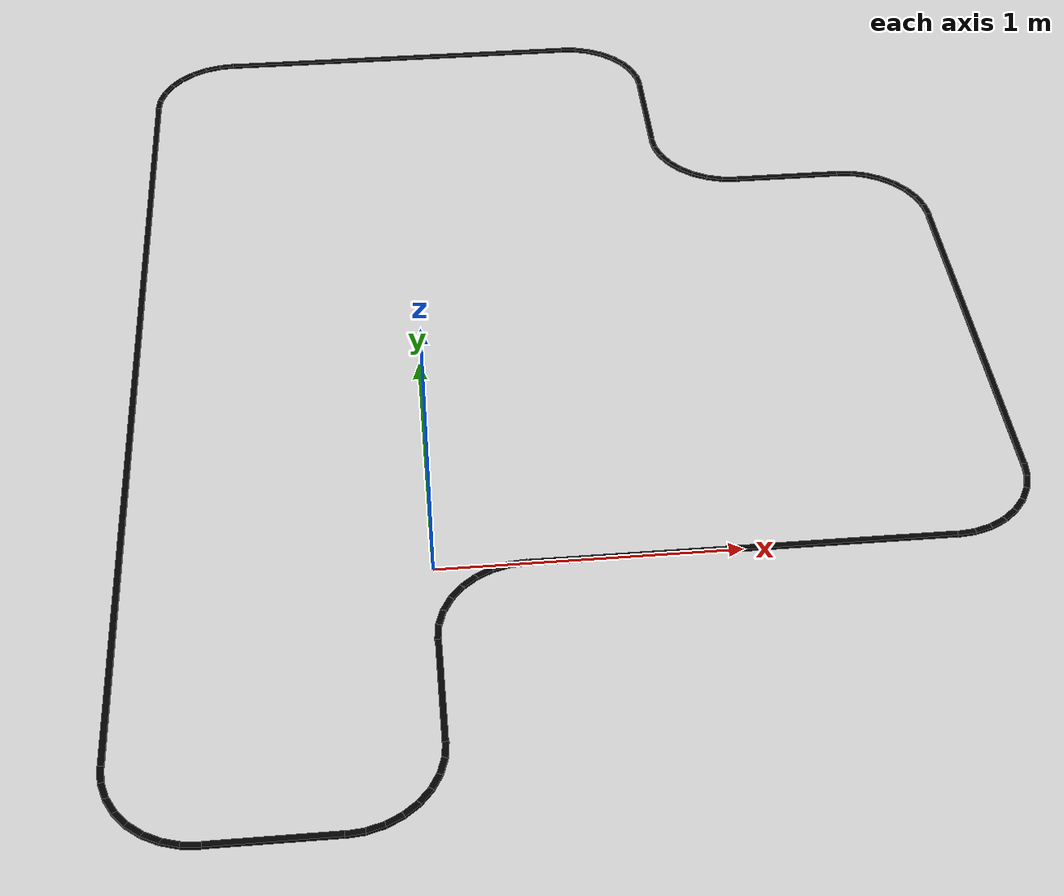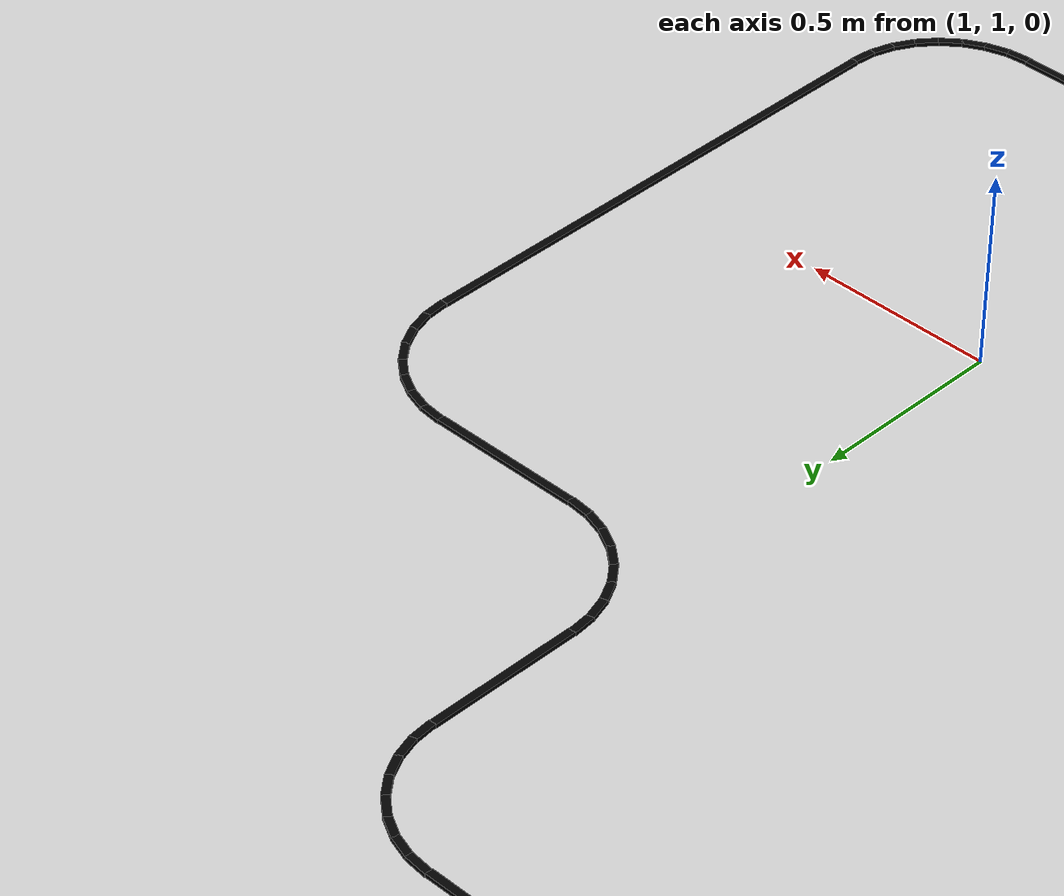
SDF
<sdf version="1.6">
 <world name="line_track_world">
  <include><uri>model://sun</uri></include>
  <include><uri>model://ground_plane</uri></include>
  <model name="straight_1">
   <static>true</static>
   <link name="link">
    <pose>1.0 0.0 0.005 0 0 0.0</pose>
    <visual name="visual">
     <geometry><box><size>1.4 0.02 0.01</size></box></geometry>
     <material><ambient>0 0 0 1</ambient><diffuse>0 0 0 1</diffuse></material>
    </visual>
    <collision name="collision">
     <geometry><box><size>1.4 0.02 0.01</size></box></geometry>
     <surface><contact><collide_without_contact>true</collide_without_contact></contact></surface>
    </collision>
   </link>
  </model>
  <model name="arc_2">
   <static>true</static>
   <link name="link">
    <pose>1.729405142098868 0.0014445819983409658 0.005 0 0 0.09817477042468115</pose>
    <visual name="visual">
     <geometry><box><size>0.06175079840762318 0.02 0.01</size></box></geometry>
     <material><ambient>0 0 0 1</ambient><diffuse>0 0 0 1</diffuse></material>
    </visual>
    <collision name="collision">
     <geometry><box><size>0.06175079840762318 0.02 0.01</size></box></geometry>
     <surface><contact><collide_without_contact>true</collide_without_contact></contact></surface>
    </collision>
   </link>
  </model>
  <model name="arc_3">
   <static>true</static>
   <link name="link">
    <pose>1.7870854031763386 0.01291789928033732 0.005 0 0 0.294524311274043</pose>
    <visual name="visual">
     <geometry><box><size>0.06175079840762318 0.02 0.01</size></box></geometry>
     <material><ambient>0 0 0 1</ambient><diffuse>0 0 0 1</diffuse></material>
    </visual>
    <collision name="collision">
     <geometry><box><size>0.06175079840762318 0.02 0.01</size></box></geometry>
     <surface><contact><collide_without_contact>true</collide_without_contact></contact></surface>
    </collision>
   </link>
  </model>
  <model name="arc_4">
   <static>true</static>
   <link name="link">
    <pose>1.8414190210477992 0.03542362069549354 0.005 0 0 0.4908738521234053</pose>
    <visual name="visual">
     <geometry><box><size>0.06175079840762318 0.02 0.01</size></box></geometry>
     <material><ambient>0 0 0 1</ambient><diffuse>0 0 0 1</diffuse></material>
    </visual>
    <collision name="collision">
     <geometry><box><size>0.06175079840762318 0.02 0.01</size></box></geometry>
     <surface><contact><collide_without_contact>true</collide_without_contact></contact></surface>
    </collision>
   </link>
  </model>
  <model name="arc_5">
   <static>true</static>
   <link name="link">
    <pose>1.8903179852490937 0.0680968639911789 0.005 0 0 0.6872233929727672</pose>
    <visual name="visual">
     <geometry><box><size>0.06175079840762318 0.02 0.01</size></box></geometry>
     <material><ambient>0 0 0 1</ambient><diffuse>0 0 0 1</diffuse></material>
    </visual>
    <collision name="collision">
     <geometry><box><size>0.06175079840762318 0.02 0.01</size></box></geometry>
     <surface><contact><collide_without_contact>true</collide_without_contact></contact></surface>
    </collision>
   </link>
  </model>
  <model name="arc_6">
   <static>true</static>
   <link name="link">
    <pose>1.931903136008821 0.10968201475090636 0.005 0 0 0.8835729338221293</pose>
    <visual name="visual">
     <geometry><box><size>0.06175079840762318 0.02 0.01</size></box></geometry>
     <material><ambient>0 0 0 1</ambient><diffuse>0 0 0 1</diffuse></material>
    </visual>
    <collision name="collision">
     <geometry><box><size>0.06175079840762318 0.02 0.01</size></box></geometry>
     <surface><contact><collide_without_contact>true</collide_without_contact></contact></surface>
    </collision>
   </link>
  </model>
  <model name="arc_7">
   <static>true</static>
   <link name="link">
    <pose>1.9645763793045066 0.1585809789522007 0.005 0 0 1.0799224746714913</pose>
    <visual name="visual">
     <geometry><box><size>0.06175079840762318 0.02 0.01</size></box></geometry>
     <material><ambient>0 0 0 1</ambient><diffuse>0 0 0 1</diffuse></material>
    </visual>
    <collision name="collision">
     <geometry><box><size>0.06175079840762318 0.02 0.01</size></box></geometry>
     <surface><contact><collide_without_contact>true</collide_without_contact></contact></surface>
    </collision>
   </link>
  </model>
  <model name="arc_8">
   <static>true</static>
   <link name="link">
    <pose>1.9870821007196626 0.2129145968236613 0.005 0 0 1.2762720155208536</pose>
    <visual name="visual">
     <geometry><box><size>0.06175079840762318 0.02 0.01</size></box></geometry>
     <material><ambient>0 0 0 1</ambient><diffuse>0 0 0 1</diffuse></material>
    </visual>
    <collision name="collision">
     <geometry><box><size>0.06175079840762318 0.02 0.01</size></box></geometry>
     <surface><contact><collide_without_contact>true</collide_without_contact></contact></surface>
    </collision>
   </link>
  </model>
  <model name="arc_9">
   <static>true</static>
   <link name="link">
    <pose>1.9985554180016591 0.2705948579011318 0.005 0 0 1.4726215563702154</pose>
    <visual name="visual">
     <geometry><box><size>0.06175079840762318 0.02 0.01</size></box></geometry>
     <material><ambient>0 0 0 1</ambient><diffuse>0 0 0 1</diffuse></material>
    </visual>
    <collision name="collision">
     <geometry><box><size>0.06175079840762318 0.02 0.01</size></box></geometry>
     <surface><contact><collide_without_contact>true</collide_without_contact></contact></surface>
    </collision>
   </link>
  </model>
  <model name="straight_10">
   <static>true</static>
   <link name="link">
    <pose>2.0 1.0 0.005 0 0 1.5707963267948966</pose>
    <visual name="visual">
     <geometry><box><size>1.4 0.02 0.01</size></box></geometry>
     <material><ambient>0 0 0 1</ambient><diffuse>0 0 0 1</diffuse></material>
    </visual>
    <collision name="collision">
     <geometry><box><size>1.4 0.02 0.01</size></box></geometry>
     <surface><contact><collide_without_contact>true</collide_without_contact></contact></surface>
    </collision>
   </link>
  </model>
  <model name="arc_11">
   <static>true</static>
   <link name="link">
    <pose>1.9985554180016591 1.729405142098868 0.005 0 0 1.6689710972195777</pose>
    <visual name="visual">
     <geometry><box><size>0.06175079840762318 0.02 0.01</size></box></geometry>
     <material><ambient>0 0 0 1</ambient><diffuse>0 0 0 1</diffuse></material>
    </visual>
    <collision name="collision">
     <geometry><box><size>0.06175079840762318 0.02 0.01</size></box></geometry>
     <surface><contact><collide_without_contact>true</collide_without_contact></contact></surface>
    </collision>
   </link>
  </model>
  <model name="arc_12">
   <static>true</static>
   <link name="link">
    <pose>1.9870821007196626 1.7870854031763386 0.005 0 0 1.8653206380689396</pose>
    <visual name="visual">
     <geometry><box><size>0.06175079840762318 0.02 0.01</size></box></geometry>
     <material><ambient>0 0 0 1</ambient><diffuse>0 0 0 1</diffuse></material>
    </visual>
    <collision name="collision">
     <geometry><box><size>0.06175079840762318 0.02 0.01</size></box></geometry>
     <surface><contact><collide_without_contact>true</collide_without_contact></contact></surface>
    </collision>
   </link>
  </model>
  <model name="arc_13">
   <static>true</static>
   <link name="link">
    <pose>1.9645763793045066 1.8414190210477992 0.005 0 0 2.061670178918302</pose>
    <visual name="visual">
     <geometry><box><size>0.06175079840762318 0.02 0.01</size></box></geometry>
     <material><ambient>0 0 0 1</ambient><diffuse>0 0 0 1</diffuse></material>
    </visual>
    <collision name="collision">
     <geometry><box><size>0.06175079840762318 0.02 0.01</size></box></geometry>
     <surface><contact><collide_without_contact>true</collide_without_contact></contact></surface>
    </collision>
   </link>
  </model>
  <model name="arc_14">
   <static>true</static>
   <link name="link">
    <pose>1.931903136008821 1.8903179852490937 0.005 0 0 2.2580197197676637</pose>
    <visual name="visual">
     <geometry><box><size>0.06175079840762318 0.02 0.01</size></box></geometry>
     <material><ambient>0 0 0 1</ambient><diffuse>0 0 0 1</diffuse></material>
    </visual>
    <collision name="collision">
     <geometry><box><size>0.06175079840762318 0.02 0.01</size></box></geometry>
     <surface><contact><collide_without_contact>true</collide_without_contact></contact></surface>
    </collision>
   </link>
  </model>
  <model name="arc_15">
   <static>true</static>
   <link name="link">
    <pose>1.8903179852490937 1.931903136008821 0.005 0 0 2.454369260617026</pose>
    <visual name="visual">
     <geometry><box><size>0.06175079840762318 0.02 0.01</size></box></geometry>
     <material><ambient>0 0 0 1</ambient><diffuse>0 0 0 1</diffuse></material>
    </visual>
    <collision name="collision">
     <geometry><box><size>0.06175079840762318 0.02 0.01</size></box></geometry>
     <surface><contact><collide_without_contact>true</collide_without_contact></contact></surface>
    </collision>
   </link>
  </model>
  <model name="arc_16">
   <static>true</static>
   <link name="link">
    <pose>1.8414190210477992 1.9645763793045063 0.005 0 0 2.650718801466388</pose>
    <visual name="visual">
     <geometry><box><size>0.06175079840762318 0.02 0.01</size></box></geometry>
     <material><ambient>0 0 0 1</ambient><diffuse>0 0 0 1</diffuse></material>
    </visual>
    <collision name="collision">
     <geometry><box><size>0.06175079840762318 0.02 0.01</size></box></geometry>
     <surface><contact><collide_without_contact>true</collide_without_contact></contact></surface>
    </collision>
   </link>
  </model>
  <model name="arc_17">
   <static>true</static>
   <link name="link">
    <pose>1.7870854031763386 1.9870821007196626 0.005 0 0 2.84706834231575</pose>
    <visual name="visual">
     <geometry><box><size>0.06175079840762318 0.02 0.01</size></box></geometry>
     <material><ambient>0 0 0 1</ambient><diffuse>0 0 0 1</diffuse></material>
    </visual>
    <collision name="collision">
     <geometry><box><size>0.06175079840762318 0.02 0.01</size></box></geometry>
     <surface><contact><collide_without_contact>true</collide_without_contact></contact></surface>
    </collision>
   </link>
  </model>
  <model name="arc_18">
   <static>true</static>
   <link name="link">
    <pose>1.729405142098868 1.998555418001659 0.005 0 0 3.043417883165112</pose>
    <visual name="visual">
     <geometry><box><size>0.06175079840762318 0.02 0.01</size></box></geometry>
     <material><ambient>0 0 0 1</ambient><diffuse>0 0 0 1</diffuse></material>
    </visual>
    <collision name="collision">
     <geometry><box><size>0.06175079840762318 0.02 0.01</size></box></geometry>
     <surface><contact><collide_without_contact>true</collide_without_contact></contact></surface>
    </collision>
   </link>
  </model>
  <model name="straight_19">
   <static>true</static>
   <link name="link">
    <pose>1.5 2.0 0.005 0 0 3.141592653589793</pose>
    <visual name="visual">
     <geometry><box><size>0.3999999999999999 0.02 0.01</size></box></geometry>
     <material><ambient>0 0 0 1</ambient><diffuse>0 0 0 1</diffuse></material>
    </visual>
    <collision name="collision">
     <geometry><box><size>0.3999999999999999 0.02 0.01</size></box></geometry>
     <surface><contact><collide_without_contact>true</collide_without_contact></contact></surface>
    </collision>
   </link>
  </model>
  <model name="arc_20">
   <static>true</static>
   <link name="link">
    <pose>1.270594857901132 2.001444581998341 0.005 0 0 -0.09817477042468115</pose>
    <visual name="visual">
     <geometry><box><size>0.06175079840762318 0.02 0.01</size></box></geometry>
     <material><ambient>0 0 0 1</ambient><diffuse>0 0 0 1</diffuse></material>
    </visual>
    <collision name="collision">
     <geometry><box><size>0.06175079840762318 0.02 0.01</size></box></geometry>
     <surface><contact><collide_without_contact>true</collide_without_contact></contact></surface>
    </collision>
   </link>
  </model>
  <model name="arc_21">
   <static>true</static>
   <link name="link">
    <pose>1.2129145968236614 2.012917899280337 0.005 0 0 -0.294524311274043</pose>
    <visual name="visual">
     <geometry><box><size>0.06175079840762318 0.02 0.01</size></box></geometry>
     <material><ambient>0 0 0 1</ambient><diffuse>0 0 0 1</diffuse></material>
    </visual>
    <collision name="collision">
     <geometry><box><size>0.06175079840762318 0.02 0.01</size></box></geometry>
     <surface><contact><collide_without_contact>true</collide_without_contact></contact></surface>
    </collision>
   </link>
  </model>
  <model name="arc_22">
   <static>true</static>
   <link name="link">
    <pose>1.1585809789522008 2.0354236206954934 0.005 0 0 -0.4908738521234053</pose>
    <visual name="visual">
     <geometry><box><size>0.06175079840762318 0.02 0.01</size></box></geometry>
     <material><ambient>0 0 0 1</ambient><diffuse>0 0 0 1</diffuse></material>
    </visual>
    <collision name="collision">
     <geometry><box><size>0.06175079840762318 0.02 0.01</size></box></geometry>
     <surface><contact><collide_without_contact>true</collide_without_contact></contact></surface>
    </collision>
   </link>
  </model>
  <model name="arc_23">
   <static>true</static>
   <link name="link">
    <pose>1.1096820147509066 2.0680968639911788 0.005 0 0 -0.6872233929727671</pose>
    <visual name="visual">
     <geometry><box><size>0.06175079840762318 0.02 0.01</size></box></geometry>
     <material><ambient>0 0 0 1</ambient><diffuse>0 0 0 1</diffuse></material>
    </visual>
    <collision name="collision">
     <geometry><box><size>0.06175079840762318 0.02 0.01</size></box></geometry>
     <surface><contact><collide_without_contact>true</collide_without_contact></contact></surface>
    </collision>
   </link>
  </model>
  <model name="arc_24">
   <static>true</static>
   <link name="link">
    <pose>1.068096863991179 2.109682014750906 0.005 0 0 -0.8835729338221294</pose>
    <visual name="visual">
     <geometry><box><size>0.06175079840762318 0.02 0.01</size></box></geometry>
     <material><ambient>0 0 0 1</ambient><diffuse>0 0 0 1</diffuse></material>
    </visual>
    <collision name="collision">
     <geometry><box><size>0.06175079840762318 0.02 0.01</size></box></geometry>
     <surface><contact><collide_without_contact>true</collide_without_contact></contact></surface>
    </collision>
   </link>
  </model>
  <model name="arc_25">
   <static>true</static>
   <link name="link">
    <pose>1.0354236206954937 2.1585809789522004 0.005 0 0 -1.0799224746714913</pose>
    <visual name="visual">
     <geometry><box><size>0.06175079840762318 0.02 0.01</size></box></geometry>
     <material><ambient>0 0 0 1</ambient><diffuse>0 0 0 1</diffuse></material>
    </visual>
    <collision name="collision">
     <geometry><box><size>0.06175079840762318 0.02 0.01</size></box></geometry>
     <surface><contact><collide_without_contact>true</collide_without_contact></contact></surface>
    </collision>
   </link>
  </model>
  <model name="arc_26">
   <static>true</static>
   <link name="link">
    <pose>1.0129178992803374 2.212914596823661 0.005 0 0 -1.2762720155208536</pose>
    <visual name="visual">
     <geometry><box><size>0.06175079840762318 0.02 0.01</size></box></geometry>
     <material><ambient>0 0 0 1</ambient><diffuse>0 0 0 1</diffuse></material>
    </visual>
    <collision name="collision">
     <geometry><box><size>0.06175079840762318 0.02 0.01</size></box></geometry>
     <surface><contact><collide_without_contact>true</collide_without_contact></contact></surface>
    </collision>
   </link>
  </model>
  <model name="arc_27">
   <static>true</static>
   <link name="link">
    <pose>1.001444581998341 2.2705948579011315 0.005 0 0 -1.4726215563702154</pose>
    <visual name="visual">
     <geometry><box><size>0.06175079840762318 0.02 0.01</size></box></geometry>
     <material><ambient>0 0 0 1</ambient><diffuse>0 0 0 1</diffuse></material>
    </visual>
    <collision name="collision">
     <geometry><box><size>0.06175079840762318 0.02 0.01</size></box></geometry>
     <surface><contact><collide_without_contact>true</collide_without_contact></contact></surface>
    </collision>
   </link>
  </model>
  <model name="straight_28">
   <static>true</static>
   <link name="link">
    <pose>1.0 2.5 0.005 0 0 1.5707963267948966</pose>
    <visual name="visual">
     <geometry><box><size>0.40000000000000036 0.02 0.01</size></box></geometry>
     <material><ambient>0 0 0 1</ambient><diffuse>0 0 0 1</diffuse></material>
    </visual>
    <collision name="collision">
     <geometry><box><size>0.40000000000000036 0.02 0.01</size></box></geometry>
     <surface><contact><collide_without_contact>true</collide_without_contact></contact></surface>
    </collision>
   </link>
  </model>
  <model name="arc_29">
   <static>true</static>
   <link name="link">
    <pose>0.998555418001659 2.7294051420988685 0.005 0 0 1.6689710972195777</pose>
    <visual name="visual">
     <geometry><box><size>0.06175079840762318 0.02 0.01</size></box></geometry>
     <material><ambient>0 0 0 1</ambient><diffuse>0 0 0 1</diffuse></material>
    </visual>
    <collision name="collision">
     <geometry><box><size>0.06175079840762318 0.02 0.01</size></box></geometry>
     <surface><contact><collide_without_contact>true</collide_without_contact></contact></surface>
    </collision>
   </link>
  </model>
  <model name="arc_30">
   <static>true</static>
   <link name="link">
    <pose>0.9870821007196626 2.787085403176339 0.005 0 0 1.8653206380689396</pose>
    <visual name="visual">
     <geometry><box><size>0.06175079840762318 0.02 0.01</size></box></geometry>
     <material><ambient>0 0 0 1</ambient><diffuse>0 0 0 1</diffuse></material>
    </visual>
    <collision name="collision">
     <geometry><box><size>0.06175079840762318 0.02 0.01</size></box></geometry>
     <surface><contact><collide_without_contact>true</collide_without_contact></contact></surface>
    </collision>
   </link>
  </model>
  <model name="arc_31">
   <static>true</static>
   <link name="link">
    <pose>0.9645763793045065 2.8414190210477996 0.005 0 0 2.061670178918302</pose>
    <visual name="visual">
     <geometry><box><size>0.06175079840762318 0.02 0.01</size></box></geometry>
     <material><ambient>0 0 0 1</ambient><diffuse>0 0 0 1</diffuse></material>
    </visual>
    <collision name="collision">
     <geometry><box><size>0.06175079840762318 0.02 0.01</size></box></geometry>
     <surface><contact><collide_without_contact>true</collide_without_contact></contact></surface>
    </collision>
   </link>
  </model>
  <model name="arc_32">
   <static>true</static>
   <link name="link">
    <pose>0.931903136008821 2.890317985249094 0.005 0 0 2.2580197197676637</pose>
    <visual name="visual">
     <geometry><box><size>0.06175079840762318 0.02 0.01</size></box></geometry>
     <material><ambient>0 0 0 1</ambient><diffuse>0 0 0 1</diffuse></material>
    </visual>
    <collision name="collision">
     <geometry><box><size>0.06175079840762318 0.02 0.01</size></box></geometry>
     <surface><contact><collide_without_contact>true</collide_without_contact></contact></surface>
    </collision>
   </link>
  </model>
  <model name="arc_33">
   <static>true</static>
   <link name="link">
    <pose>0.8903179852490936 2.9319031360088212 0.005 0 0 2.454369260617026</pose>
    <visual name="visual">
     <geometry><box><size>0.06175079840762318 0.02 0.01</size></box></geometry>
     <material><ambient>0 0 0 1</ambient><diffuse>0 0 0 1</diffuse></material>
    </visual>
    <collision name="collision">
     <geometry><box><size>0.06175079840762318 0.02 0.01</size></box></geometry>
     <surface><contact><collide_without_contact>true</collide_without_contact></contact></surface>
    </collision>
   </link>
  </model>
  <model name="arc_34">
   <static>true</static>
   <link name="link">
    <pose>0.8414190210477993 2.9645763793045066 0.005 0 0 2.650718801466388</pose>
    <visual name="visual">
     <geometry><box><size>0.06175079840762318 0.02 0.01</size></box></geometry>
     <material><ambient>0 0 0 1</ambient><diffuse>0 0 0 1</diffuse></material>
    </visual>
    <collision name="collision">
     <geometry><box><size>0.06175079840762318 0.02 0.01</size></box></geometry>
     <surface><contact><collide_without_contact>true</collide_without_contact></contact></surface>
    </collision>
   </link>
  </model>
  <model name="arc_35">
   <static>true</static>
   <link name="link">
    <pose>0.7870854031763387 2.987082100719663 0.005 0 0 2.84706834231575</pose>
    <visual name="visual">
     <geometry><box><size>0.06175079840762318 0.02 0.01</size></box></geometry>
     <material><ambient>0 0 0 1</ambient><diffuse>0 0 0 1</diffuse></material>
    </visual>
    <collision name="collision">
     <geometry><box><size>0.06175079840762318 0.02 0.01</size></box></geometry>
     <surface><contact><collide_without_contact>true</collide_without_contact></contact></surface>
    </collision>
   </link>
  </model>
  <model name="arc_36">
   <static>true</static>
   <link name="link">
    <pose>0.7294051420988682 2.998555418001659 0.005 0 0 3.043417883165112</pose>
    <visual name="visual">
     <geometry><box><size>0.06175079840762318 0.02 0.01</size></box></geometry>
     <material><ambient>0 0 0 1</ambient><diffuse>0 0 0 1</diffuse></material>
    </visual>
    <collision name="collision">
     <geometry><box><size>0.06175079840762318 0.02 0.01</size></box></geometry>
     <surface><contact><collide_without_contact>true</collide_without_contact></contact></surface>
    </collision>
   </link>
  </model>
  <model name="straight_37">
   <static>true</static>
   <link name="link">
    <pose>0.0 3.0 0.005 0 0 3.141592653589793</pose>
    <visual name="visual">
     <geometry><box><size>1.4 0.02 0.01</size></box></geometry>
     <material><ambient>0 0 0 1</ambient><diffuse>0 0 0 1</diffuse></material>
    </visual>
    <collision name="collision">
     <geometry><box><size>1.4 0.02 0.01</size></box></geometry>
     <surface><contact><collide_without_contact>true</collide_without_contact></contact></surface>
    </collision>
   </link>
  </model>
  <model name="arc_38">
   <static>true</static>
   <link name="link">
    <pose>-0.7294051420988682 2.998555418001659 0.005 0 0 3.2397674240144743</pose>
    <visual name="visual">
     <geometry><box><size>0.06175079840762318 0.02 0.01</size></box></geometry>
     <material><ambient>0 0 0 1</ambient><diffuse>0 0 0 1</diffuse></material>
    </visual>
    <collision name="collision">
     <geometry><box><size>0.06175079840762318 0.02 0.01</size></box></geometry>
     <surface><contact><collide_without_contact>true</collide_without_contact></contact></surface>
    </collision>
   </link>
  </model>
  <model name="arc_39">
   <static>true</static>
   <link name="link">
    <pose>-0.7870854031763386 2.987082100719663 0.005 0 0 3.436116964863836</pose>
    <visual name="visual">
     <geometry><box><size>0.06175079840762318 0.02 0.01</size></box></geometry>
     <material><ambient>0 0 0 1</ambient><diffuse>0 0 0 1</diffuse></material>
    </visual>
    <collision name="collision">
     <geometry><box><size>0.06175079840762318 0.02 0.01</size></box></geometry>
     <surface><contact><collide_without_contact>true</collide_without_contact></contact></surface>
    </collision>
   </link>
  </model>
  <model name="arc_40">
   <static>true</static>
   <link name="link">
    <pose>-0.8414190210477992 2.9645763793045066 0.005 0 0 3.6324665057131984</pose>
    <visual name="visual">
     <geometry><box><size>0.06175079840762318 0.02 0.01</size></box></geometry>
     <material><ambient>0 0 0 1</ambient><diffuse>0 0 0 1</diffuse></material>
    </visual>
    <collision name="collision">
     <geometry><box><size>0.06175079840762318 0.02 0.01</size></box></geometry>
     <surface><contact><collide_without_contact>true</collide_without_contact></contact></surface>
    </collision>
   </link>
  </model>
  <model name="arc_41">
   <static>true</static>
   <link name="link">
    <pose>-0.8903179852490936 2.9319031360088212 0.005 0 0 3.8288160465625602</pose>
    <visual name="visual">
     <geometry><box><size>0.06175079840762318 0.02 0.01</size></box></geometry>
     <material><ambient>0 0 0 1</ambient><diffuse>0 0 0 1</diffuse></material>
    </visual>
    <collision name="collision">
     <geometry><box><size>0.06175079840762318 0.02 0.01</size></box></geometry>
     <surface><contact><collide_without_contact>true</collide_without_contact></contact></surface>
    </collision>
   </link>
  </model>
  <model name="arc_42">
   <static>true</static>
   <link name="link">
    <pose>-0.931903136008821 2.890317985249094 0.005 0 0 4.025165587411923</pose>
    <visual name="visual">
     <geometry><box><size>0.06175079840762318 0.02 0.01</size></box></geometry>
     <material><ambient>0 0 0 1</ambient><diffuse>0 0 0 1</diffuse></material>
    </visual>
    <collision name="collision">
     <geometry><box><size>0.06175079840762318 0.02 0.01</size></box></geometry>
     <surface><contact><collide_without_contact>true</collide_without_contact></contact></surface>
    </collision>
   </link>
  </model>
  <model name="arc_43">
   <static>true</static>
   <link name="link">
    <pose>-0.9645763793045063 2.8414190210477996 0.005 0 0 4.221515128261284</pose>
    <visual name="visual">
     <geometry><box><size>0.06175079840762318 0.02 0.01</size></box></geometry>
     <material><ambient>0 0 0 1</ambient><diffuse>0 0 0 1</diffuse></material>
    </visual>
    <collision name="collision">
     <geometry><box><size>0.06175079840762318 0.02 0.01</size></box></geometry>
     <surface><contact><collide_without_contact>true</collide_without_contact></contact></surface>
    </collision>
   </link>
  </model>
  <model name="arc_44">
   <static>true</static>
   <link name="link">
    <pose>-0.9870821007196626 2.787085403176339 0.005 0 0 4.417864669110647</pose>
    <visual name="visual">
     <geometry><box><size>0.06175079840762318 0.02 0.01</size></box></geometry>
     <material><ambient>0 0 0 1</ambient><diffuse>0 0 0 1</diffuse></material>
    </visual>
    <collision name="collision">
     <geometry><box><size>0.06175079840762318 0.02 0.01</size></box></geometry>
     <surface><contact><collide_without_contact>true</collide_without_contact></contact></surface>
    </collision>
   </link>
  </model>
  <model name="arc_45">
   <static>true</static>
   <link name="link">
    <pose>-0.9985554180016589 2.7294051420988685 0.005 0 0 4.614214209960009</pose>
    <visual name="visual">
     <geometry><box><size>0.06175079840762318 0.02 0.01</size></box></geometry>
     <material><ambient>0 0 0 1</ambient><diffuse>0 0 0 1</diffuse></material>
    </visual>
    <collision name="collision">
     <geometry><box><size>0.06175079840762318 0.02 0.01</size></box></geometry>
     <surface><contact><collide_without_contact>true</collide_without_contact></contact></surface>
    </collision>
   </link>
  </model>
  <model name="straight_46">
   <static>true</static>
   <link name="link">
    <pose>-1.0 1.0 0.005 0 0 -1.5707963267948966</pose>
    <visual name="visual">
     <geometry><box><size>3.4000000000000004 0.02 0.01</size></box></geometry>
     <material><ambient>0 0 0 1</ambient><diffuse>0 0 0 1</diffuse></material>
    </visual>
    <collision name="collision">
     <geometry><box><size>3.4000000000000004 0.02 0.01</size></box></geometry>
     <surface><contact><collide_without_contact>true</collide_without_contact></contact></surface>
    </collision>
   </link>
  </model>
  <model name="arc_47">
   <static>true</static>
   <link name="link">
    <pose>-0.998555418001659 -0.7294051420988681 0.005 0 0 4.81056375080937</pose>
    <visual name="visual">
     <geometry><box><size>0.06175079840762318 0.02 0.01</size></box></geometry>
     <material><ambient>0 0 0 1</ambient><diffuse>0 0 0 1</diffuse></material>
    </visual>
    <collision name="collision">
     <geometry><box><size>0.06175079840762318 0.02 0.01</size></box></geometry>
     <surface><contact><collide_without_contact>true</collide_without_contact></contact></surface>
    </collision>
   </link>
  </model>
  <model name="arc_48">
   <static>true</static>
   <link name="link">
    <pose>-0.9870821007196626 -0.7870854031763386 0.005 0 0 5.006913291658733</pose>
    <visual name="visual">
     <geometry><box><size>0.06175079840762318 0.02 0.01</size></box></geometry>
     <material><ambient>0 0 0 1</ambient><diffuse>0 0 0 1</diffuse></material>
    </visual>
    <collision name="collision">
     <geometry><box><size>0.06175079840762318 0.02 0.01</size></box></geometry>
     <surface><contact><collide_without_contact>true</collide_without_contact></contact></surface>
    </collision>
   </link>
  </model>
  <model name="arc_49">
   <static>true</static>
   <link name="link">
    <pose>-0.9645763793045065 -0.8414190210477992 0.005 0 0 5.203262832508095</pose>
    <visual name="visual">
     <geometry><box><size>0.06175079840762318 0.02 0.01</size></box></geometry>
     <material><ambient>0 0 0 1</ambient><diffuse>0 0 0 1</diffuse></material>
    </visual>
    <collision name="collision">
     <geometry><box><size>0.06175079840762318 0.02 0.01</size></box></geometry>
     <surface><contact><collide_without_contact>true</collide_without_contact></contact></surface>
    </collision>
   </link>
  </model>
  <model name="arc_50">
   <static>true</static>
   <link name="link">
    <pose>-0.931903136008821 -0.8903179852490936 0.005 0 0 5.399612373357456</pose>
    <visual name="visual">
     <geometry><box><size>0.06175079840762318 0.02 0.01</size></box></geometry>
     <material><ambient>0 0 0 1</ambient><diffuse>0 0 0 1</diffuse></material>
    </visual>
    <collision name="collision">
     <geometry><box><size>0.06175079840762318 0.02 0.01</size></box></geometry>
     <surface><contact><collide_without_contact>true</collide_without_contact></contact></surface>
    </collision>
   </link>
  </model>
  <model name="arc_51">
   <static>true</static>
   <link name="link">
    <pose>-0.8903179852490934 -0.9319031360088211 0.005 0 0 5.5959619142068195</pose>
    <visual name="visual">
     <geometry><box><size>0.06175079840762318 0.02 0.01</size></box></geometry>
     <material><ambient>0 0 0 1</ambient><diffuse>0 0 0 1</diffuse></material>
    </visual>
    <collision name="collision">
     <geometry><box><size>0.06175079840762318 0.02 0.01</size></box></geometry>
     <surface><contact><collide_without_contact>true</collide_without_contact></contact></surface>
    </collision>
   </link>
  </model>
  <model name="arc_52">
   <static>true</static>
   <link name="link">
    <pose>-0.8414190210477993 -0.9645763793045063 0.005 0 0 5.792311455056181</pose>
    <visual name="visual">
     <geometry><box><size>0.06175079840762318 0.02 0.01</size></box></geometry>
     <material><ambient>0 0 0 1</ambient><diffuse>0 0 0 1</diffuse></material>
    </visual>
    <collision name="collision">
     <geometry><box><size>0.06175079840762318 0.02 0.01</size></box></geometry>
     <surface><contact><collide_without_contact>true</collide_without_contact></contact></surface>
    </collision>
   </link>
  </model>
  <model name="arc_53">
   <static>true</static>
   <link name="link">
    <pose>-0.7870854031763389 -0.9870821007196625 0.005 0 0 5.988660995905542</pose>
    <visual name="visual">
     <geometry><box><size>0.06175079840762318 0.02 0.01</size></box></geometry>
     <material><ambient>0 0 0 1</ambient><diffuse>0 0 0 1</diffuse></material>
    </visual>
    <collision name="collision">
     <geometry><box><size>0.06175079840762318 0.02 0.01</size></box></geometry>
     <surface><contact><collide_without_contact>true</collide_without_contact></contact></surface>
    </collision>
   </link>
  </model>
  <model name="arc_54">
   <static>true</static>
   <link name="link">
    <pose>-0.7294051420988681 -0.998555418001659 0.005 0 0 6.1850105367549055</pose>
    <visual name="visual">
     <geometry><box><size>0.06175079840762318 0.02 0.01</size></box></geometry>
     <material><ambient>0 0 0 1</ambient><diffuse>0 0 0 1</diffuse></material>
    </visual>
    <collision name="collision">
     <geometry><box><size>0.06175079840762318 0.02 0.01</size></box></geometry>
     <surface><contact><collide_without_contact>true</collide_without_contact></contact></surface>
    </collision>
   </link>
  </model>
  <model name="straight_55">
   <static>true</static>
   <link name="link">
    <pose>-0.5 -1.0 0.005 0 0 0.0</pose>
    <visual name="visual">
     <geometry><box><size>0.39999999999999997 0.02 0.01</size></box></geometry>
     <material><ambient>0 0 0 1</ambient><diffuse>0 0 0 1</diffuse></material>
    </visual>
    <collision name="collision">
     <geometry><box><size>0.39999999999999997 0.02 0.01</size></box></geometry>
     <surface><contact><collide_without_contact>true</collide_without_contact></contact></surface>
    </collision>
   </link>
  </model>
  <model name="arc_56">
   <static>true</static>
   <link name="link">
    <pose>-0.27059485790113175 -0.9985554180016589 0.005 0 0 0.09817477042468115</pose>
    <visual name="visual">
     <geometry><box><size>0.06175079840762318 0.02 0.01</size></box></geometry>
     <material><ambient>0 0 0 1</ambient><diffuse>0 0 0 1</diffuse></material>
    </visual>
    <collision name="collision">
     <geometry><box><size>0.06175079840762318 0.02 0.01</size></box></geometry>
     <surface><contact><collide_without_contact>true</collide_without_contact></contact></surface>
    </collision>
   </link>
  </model>
  <model name="arc_57">
   <static>true</static>
   <link name="link">
    <pose>-0.2129145968236613 -0.9870821007196626 0.005 0 0 0.294524311274043</pose>
    <visual name="visual">
     <geometry><box><size>0.06175079840762318 0.02 0.01</size></box></geometry>
     <material><ambient>0 0 0 1</ambient><diffuse>0 0 0 1</diffuse></material>
    </visual>
    <collision name="collision">
     <geometry><box><size>0.06175079840762318 0.02 0.01</size></box></geometry>
     <surface><contact><collide_without_contact>true</collide_without_contact></contact></surface>
    </collision>
   </link>
  </model>
  <model name="arc_58">
   <static>true</static>
   <link name="link">
    <pose>-0.15858097895220066 -0.9645763793045063 0.005 0 0 0.4908738521234053</pose>
    <visual name="visual">
     <geometry><box><size>0.06175079840762318 0.02 0.01</size></box></geometry>
     <material><ambient>0 0 0 1</ambient><diffuse>0 0 0 1</diffuse></material>
    </visual>
    <collision name="collision">
     <geometry><box><size>0.06175079840762318 0.02 0.01</size></box></geometry>
     <surface><contact><collide_without_contact>true</collide_without_contact></contact></surface>
    </collision>
   </link>
  </model>
  <model name="arc_59">
   <static>true</static>
   <link name="link">
    <pose>-0.10968201475090636 -0.931903136008821 0.005 0 0 0.6872233929727672</pose>
    <visual name="visual">
     <geometry><box><size>0.06175079840762318 0.02 0.01</size></box></geometry>
     <material><ambient>0 0 0 1</ambient><diffuse>0 0 0 1</diffuse></material>
    </visual>
    <collision name="collision">
     <geometry><box><size>0.06175079840762318 0.02 0.01</size></box></geometry>
     <surface><contact><collide_without_contact>true</collide_without_contact></contact></surface>
    </collision>
   </link>
  </model>
  <model name="arc_60">
   <static>true</static>
   <link name="link">
    <pose>-0.0680968639911789 -0.8903179852490936 0.005 0 0 0.8835729338221293</pose>
    <visual name="visual">
     <geometry><box><size>0.06175079840762318 0.02 0.01</size></box></geometry>
     <material><ambient>0 0 0 1</ambient><diffuse>0 0 0 1</diffuse></material>
    </visual>
    <collision name="collision">
     <geometry><box><size>0.06175079840762318 0.02 0.01</size></box></geometry>
     <surface><contact><collide_without_contact>true</collide_without_contact></contact></surface>
    </collision>
   </link>
  </model>
  <model name="arc_61">
   <static>true</static>
   <link name="link">
    <pose>-0.035423620695493485 -0.8414190210477992 0.005 0 0 1.0799224746714913</pose>
    <visual name="visual">
     <geometry><box><size>0.06175079840762318 0.02 0.01</size></box></geometry>
     <material><ambient>0 0 0 1</ambient><diffuse>0 0 0 1</diffuse></material>
    </visual>
    <collision name="collision">
     <geometry><box><size>0.06175079840762318 0.02 0.01</size></box></geometry>
     <surface><contact><collide_without_contact>true</collide_without_contact></contact></surface>
    </collision>
   </link>
  </model>
  <model name="arc_62">
   <static>true</static>
   <link name="link">
    <pose>-0.012917899280337375 -0.7870854031763387 0.005 0 0 1.2762720155208536</pose>
    <visual name="visual">
     <geometry><box><size>0.06175079840762318 0.02 0.01</size></box></geometry>
     <material><ambient>0 0 0 1</ambient><diffuse>0 0 0 1</diffuse></material>
    </visual>
    <collision name="collision">
     <geometry><box><size>0.06175079840762318 0.02 0.01</size></box></geometry>
     <surface><contact><collide_without_contact>true</collide_without_contact></contact></surface>
    </collision>
   </link>
  </model>
  <model name="arc_63">
   <static>true</static>
   <link name="link">
    <pose>-0.0014445819983409103 -0.7294051420988681 0.005 0 0 1.4726215563702154</pose>
    <visual name="visual">
     <geometry><box><size>0.06175079840762318 0.02 0.01</size></box></geometry>
     <material><ambient>0 0 0 1</ambient><diffuse>0 0 0 1</diffuse></material>
    </visual>
    <collision name="collision">
     <geometry><box><size>0.06175079840762318 0.02 0.01</size></box></geometry>
     <surface><contact><collide_without_contact>true</collide_without_contact></contact></surface>
    </collision>
   </link>
  </model>
  <model name="straight_64">
   <static>true</static>
   <link name="link">
    <pose>0.0 -0.5 0.005 0 0 1.5707963267948966</pose>
    <visual name="visual">
     <geometry><box><size>0.39999999999999997 0.02 0.01</size></box></geometry>
     <material><ambient>0 0 0 1</ambient><diffuse>0 0 0 1</diffuse></material>
    </visual>
    <collision name="collision">
     <geometry><box><size>0.39999999999999997 0.02 0.01</size></box></geometry>
     <surface><contact><collide_without_contact>true</collide_without_contact></contact></surface>
    </collision>
   </link>
  </model>
  <model name="arc_65">
   <static>true</static>
   <link name="link">
    <pose>0.0014445819983409658 -0.27059485790113175 0.005 0 0 4.614214209960009</pose>
    <visual name="visual">
     <geometry><box><size>0.06175079840762318 0.02 0.01</size></box></geometry>
     <material><ambient>0 0 0 1</ambient><diffuse>0 0 0 1</diffuse></material>
    </visual>
    <collision name="collision">
     <geometry><box><size>0.06175079840762318 0.02 0.01</size></box></geometry>
     <surface><contact><collide_without_contact>true</collide_without_contact></contact></surface>
    </collision>
   </link>
  </model>
  <model name="arc_66">
   <static>true</static>
   <link name="link">
    <pose>0.012917899280337375 -0.21291459682366126 0.005 0 0 4.417864669110647</pose>
    <visual name="visual">
     <geometry><box><size>0.06175079840762318 0.02 0.01</size></box></geometry>
     <material><ambient>0 0 0 1</ambient><diffuse>0 0 0 1</diffuse></material>
    </visual>
    <collision name="collision">
     <geometry><box><size>0.06175079840762318 0.02 0.01</size></box></geometry>
     <surface><contact><collide_without_contact>true</collide_without_contact></contact></surface>
    </collision>
   </link>
  </model>
  <model name="arc_67">
   <static>true</static>
   <link name="link">
    <pose>0.03542362069549354 -0.15858097895220064 0.005 0 0 4.221515128261284</pose>
    <visual name="visual">
     <geometry><box><size>0.06175079840762318 0.02 0.01</size></box></geometry>
     <material><ambient>0 0 0 1</ambient><diffuse>0 0 0 1</diffuse></material>
    </visual>
    <collision name="collision">
     <geometry><box><size>0.06175079840762318 0.02 0.01</size></box></geometry>
     <surface><contact><collide_without_contact>true</collide_without_contact></contact></surface>
    </collision>
   </link>
  </model>
  <model name="arc_68">
   <static>true</static>
   <link name="link">
    <pose>0.0680968639911789 -0.10968201475090636 0.005 0 0 4.025165587411923</pose>
    <visual name="visual">
     <geometry><box><size>0.06175079840762318 0.02 0.01</size></box></geometry>
     <material><ambient>0 0 0 1</ambient><diffuse>0 0 0 1</diffuse></material>
    </visual>
    <collision name="collision">
     <geometry><box><size>0.06175079840762318 0.02 0.01</size></box></geometry>
     <surface><contact><collide_without_contact>true</collide_without_contact></contact></surface>
    </collision>
   </link>
  </model>
  <model name="arc_69">
   <static>true</static>
   <link name="link">
    <pose>0.10968201475090639 -0.06809686399117887 0.005 0 0 3.8288160465625602</pose>
    <visual name="visual">
     <geometry><box><size>0.06175079840762318 0.02 0.01</size></box></geometry>
     <material><ambient>0 0 0 1</ambient><diffuse>0 0 0 1</diffuse></material>
    </visual>
    <collision name="collision">
     <geometry><box><size>0.06175079840762318 0.02 0.01</size></box></geometry>
     <surface><contact><collide_without_contact>true</collide_without_contact></contact></surface>
    </collision>
   </link>
  </model>
  <model name="arc_70">
   <static>true</static>
   <link name="link">
    <pose>0.1585809789522007 -0.035423620695493485 0.005 0 0 3.6324665057131984</pose>
    <visual name="visual">
     <geometry><box><size>0.06175079840762318 0.02 0.01</size></box></geometry>
     <material><ambient>0 0 0 1</ambient><diffuse>0 0 0 1</diffuse></material>
    </visual>
    <collision name="collision">
     <geometry><box><size>0.06175079840762318 0.02 0.01</size></box></geometry>
     <surface><contact><collide_without_contact>true</collide_without_contact></contact></surface>
    </collision>
   </link>
  </model>
  <model name="arc_71">
   <static>true</static>
   <link name="link">
    <pose>0.21291459682366135 -0.01291789928033732 0.005 0 0 3.436116964863836</pose>
    <visual name="visual">
     <geometry><box><size>0.06175079840762318 0.02 0.01</size></box></geometry>
     <material><ambient>0 0 0 1</ambient><diffuse>0 0 0 1</diffuse></material>
    </visual>
    <collision name="collision">
     <geometry><box><size>0.06175079840762318 0.02 0.01</size></box></geometry>
     <surface><contact><collide_without_contact>true</collide_without_contact></contact></surface>
    </collision>
   </link>
  </model>
  <model name="arc_72">
   <static>true</static>
   <link name="link">
    <pose>0.2705948579011318 -0.0014445819983409103 0.005 0 0 3.2397674240144743</pose>
    <visual name="visual">
     <geometry><box><size>0.06175079840762318 0.02 0.01</size></box></geometry>
     <material><ambient>0 0 0 1</ambient><diffuse>0 0 0 1</diffuse></material>
    </visual>
    <collision name="collision">
     <geometry><box><size>0.06175079840762318 0.02 0.01</size></box></geometry>
     <surface><contact><collide_without_contact>true</collide_without_contact></contact></surface>
    </collision>
   </link>
  </model>
 </world>
</sdf>
